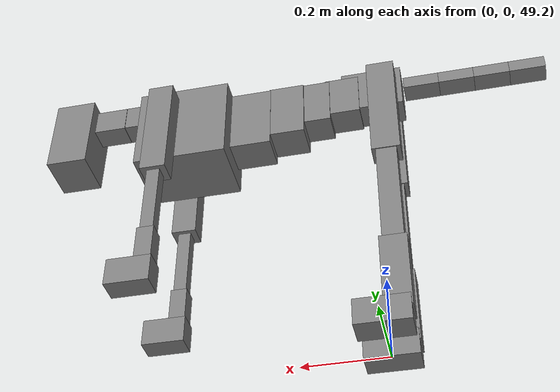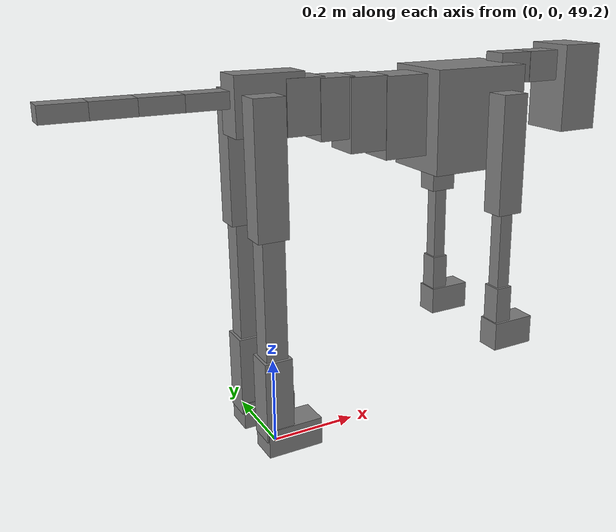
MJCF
<mujoco model="dog">

    <default>
        <joint armature="0.02" stiffness="1" damping="0.2" limited="true"/>
        <geom condim="3" friction="1 0.05 0.05" margin="0.01"/>
        <motor ctrllimited="true" ctrlrange="-1.0 1.0" forcelimited="true" gear="50"/>
    </default>

    <compiler inertiafromgeom="true" angle="radian"/>

    <option timestep="0.016" iterations="50" tolerance="1e-10" solver="Newton" jacobian="dense" cone="pyramidal"/>

    <size nconmax="20000" njmax="60000" nstack="5000000"/>
    <visual>
        <map force="0.1" zfar="30"/>
        <rgba haze="0.15 0.25 0.35 1"/>
        <quality shadowsize="2048"/>
        <global offwidth="800" offheight="800"/>
    </visual>

    <asset>
        <texture type="skybox" builtin="gradient" rgb1="0.3 0.5 0.7" rgb2="0 0 0" width="512" height="512"/>
        <texture name="texplane" type="2d" builtin="checker" rgb1=".2 .3 .4" rgb2=".1 0.15 0.2" width="512" height="512"
                 mark="cross" markrgb=".8 .8 .8"/>
        <texture name="texgeom" type="cube" builtin="flat" mark="cross" width="127" height="1278" rgb1="0.8 0.6 0.4"
                 rgb2="0.8 0.6 0.4" markrgb="1 1 1" random="0.01"/>

        <material name="matplane" reflectance="0.3" texture="texplane" texrepeat="1 1" texuniform="true"/>
        <material name="matgeom" texture="texgeom" texuniform="true" rgba="0.8 0.6 .4 1"/>
    </asset>

    <worldbody>
        <geom name="floor" pos="0 0 0" size="0 0 .25" type="plane" material="matplane" condim="3"/>

        <light directional="false" diffuse=".2 .2 .2" specular="0 0 0" pos="0 0 5" dir="0 0 -1" castshadow="false"/>
        <light mode="targetbodycom" target="torso" directional="false" diffuse=".8 .8 .8" specular="0.3 0.3 0.3"
               pos="0 0 4.0" dir="0 0 -1"/>

        <body name="root" pos="0 0 50">
            <freejoint name="root_1"/>
            <geom type="box" pos="0 0 -0.02" size="0.0774  0.0358  0.063" density="2030"/>

            <body name="spine1" pos="0.054 0 0">
                <joint name="spine1_y" axis="0 1 0" range="0 0.7" limited="true"/>
                <geom type="box" pos="0.02375 0 -0.03" size="0.04375  0.0375  0.05985" density="2030"/>

                <body name="spine2" pos="0.0612 0 0">
                    <joint name="spine2_y" axis="0 1 0" range="-0.15 0.15" limited="true"/>
                    <geom type="box" pos="0.03555  0  -0.04" size="0.04055  0.039  0.06615" density="2030"/>

                    <body name="spine3" pos="0.0730 0 0">
                        <joint name="spine3_y" axis="0 1 0" range="-0.15 0.15" limited="true"/>
                        <geom type="box" pos="0.03555  0  -0.057" size="0.04555  0.0445  0.081" density="2030"/>

                        <body name="spine4" pos="0.0780 0 0">
                            <joint name="spine4_y" axis="0 1 0" range="-0.15 0.15" limited="true"/>
                            <geom type="box" pos="0.05265  0  -0.07" size="0.05265  0.045  0.09135" density="2030"/>

                            <body name="torso" pos="0.1082 0 0">
                                <joint name="torso_y" axis="0 1 0" range="-0.15 0.15" limited="true"/>
                                <geom type="box" pos="0.11925  0  -0.085" size="0.11925  0.085  0.11745"
                                      density="2030"/>

                                <body name="neck1" pos="0.2160  0   0.0180">
                                    <joint name="neck1_y" axis="0 1 0" range="-1.2  -1" limited="true"/>
                                    <geom type="box" pos="0.0423  0  0" size="0.0423  0.03  0.036" density="2325"/>

                                    <body name="neck2" pos="0.0853  0  0">
                                        <joint name="neck2_y" axis="0 1 0" range="0.1  0" limited="true"/>
                                        <geom type="box" pos="0.0423  0  0" size="0.0423  0.03  0.036" density="2325"/>

                                        <body name="head" pos="0.0853  0  0">
                                            <joint name="head_y" axis="0 1 0" range="-0.3  -0.2" limited="true"/>
                                            <geom type="box" pos="0.0531  0  -0.055" size="0.0531  0.06  0.1044"
                                                  density="4030"/>

                                        </body>
                                    </body>
                                </body>

                                <body name="front_shoulder" pos="0.156  0   -0.0480">
                                    <joint name="front_shoulder_y" axis="0 1 0" range="-1 1.5" limited="true"/>
                                    <geom type="box" pos="0 0.13 -0.1105" size="0.0320  0.0273  0.1371" density="1158"/>
                                    <geom type="box" pos="0 -0.13 -0.1105" size="0.0320  0.0273  0.1371"
                                          density="1158"/>

                                    <body name="front_elbow" pos="0  0  -0.2210">
                                        <joint name="front_elbow_y" axis="0 1 0" range="-2 0" limited="true"/>
                                        <geom type="box" pos="0 0.13 -0.1100" size="0.0163  0.0167  0.1100"
                                              density="1081"/>
                                        <geom type="box" pos="0 -0.13 -0.1100" size="0.0163  0.0167  0.1100"
                                              density="1081"/>

                                        <body name="front_wrist" pos="0  0  -0.2199">
                                            <joint name="front_wrist_y" axis="0 1 0" range="-0.2 0" limited="true"/>
                                            <geom type="box" pos="0 0.13 -0.0439" size="0.0206  0.0229  0.0570"
                                                  density="1664"/>
                                            <geom type="box" pos="0 -0.13 -0.0439" size="0.0206  0.0229  0.0570"
                                                  density="1664"/>

                                            <body name="front_finger_end" pos="0  0  -0.0878">
                                                <joint name="front_finger_y" axis="0 1 0" range="-0.4 1"
                                                       limited="true"/>
                                                <geom type="box" pos="0.0288  0.13  -0.0187"
                                                      size="0.0529  0.0288  0.0337" density="1515"/>
                                                <geom type="box" pos="0.0288  -0.13  -0.0187"
                                                      size="0.0529  0.0288  0.0337" density="1515"/>

                                            </body>

                                        </body>
                                    </body>
                                </body>

                            </body>
                        </body>
                    </body>
                </body>
            </body>

            <body name="back_hip" pos="-0.03 0 -0.018">
                <joint name="back_hip_y" axis="0 1 0" range="-1.5 0.3" limited="true"/>
                <geom type="box" pos="0 0.07 -0.1231" size="0.0348  0.0273  0.1459" density="1154"/>
                <geom type="box" pos="0 -0.07 -0.1231" size="0.0348  0.0273  0.1459" density="1154"/>

                <body name="back_knee" pos="0  0  -0.2461">
                    <joint name="back_knee_y" axis="0 1 0" range="0 2.8" limited="true"/>
                    <geom type="box" pos="0 0.07 -0.1493" size="0.0251  0.0248  0.1649" density="1227"/>
                    <geom type="box" pos="0 -0.07 -0.1493" size="0.0251  0.0248  0.1649" density="1227"/>

                    <body name="back_ankle" pos="0  0  -0.2986">
                        <joint name="back_ankle_y" axis="0 1 0" range="-2.2 0" limited="true"/>
                        <geom type="box" pos="0 0.07 -0.0812" size="0.0319  0.0319  0.0925" density="1284"/>
                        <geom type="box" pos="0 -0.07 -0.0812" size="0.0319  0.0319  0.0925" density="1284"/>

                        <body name="back_toe_end" pos="0  0  -0.1625">
                            <joint name="back_toe_y" axis="0 1 0" range="-0.4 1" limited="true"/>
                            <geom type="box" pos="0.0345  0.07  -0.0167" size="0.0632  0.0345  0.0317" density="1515"/>
                            <geom type="box" pos="0.0345  -0.07  -0.0167" size="0.0632  0.0345  0.0317" density="1515"/>

                        </body>
                    </body>
                </body>
            </body>

            <body name="tail1" pos="-0.074 0 -0.006">
                <joint name="tail1_y" axis="0 1 0" range="-0.2 0.2" limited="true"/>
                <geom type="box" pos="-0.0536  0  0" size="0.045  0.025  0.0175" density="1587"/>

                <body name="tail2" pos="-0.09 0 0">
                    <joint name="tail2_y" axis="0 1 0" range="-0.2 0.2" limited="true"/>
                    <geom type="box" pos="-0.0536  0  0" size="0.045  0.025  0.0175" density="1587"/>

                    <body name="tail3" pos="-0.09 0 0">
                        <joint name="tail3_y" axis="0 1 0" range="-0.2 0.2" limited="true"/>
                        <geom type="box" pos="-0.0536  0  0" size="0.045  0.025  0.0175" density="1587"/>

                        <body name="tail4" pos="-0.09 0 0">
                            <joint name="tail4_y" axis="0 1 0" range="-0.2 0.2" limited="true"/>
                            <geom type="box" pos="-0.0536  0  0" size="0.045  0.025  0.0175" density="1587"/>

                        </body>
                    </body>
                </body>
            </body>
        </body>
    </worldbody>

    <actuator>
        <motor joint="spine1_y" forcerange="-150 150     "/>
        <motor joint="spine2_y" forcerange="-150 150     "/>
        <motor joint="spine3_y" forcerange="-150 150     "/>
        <motor joint="spine4_y" forcerange="-150 150     "/>
        <motor joint="torso_y" forcerange="-150 150     "/>
        <motor joint="neck1_y" forcerange="-100 100       "/>
        <motor joint="neck2_y" forcerange="-100 100       "/>
        <motor joint="head_y" forcerange="-150 150       "/>
        <motor joint="front_shoulder_y" forcerange="-138.70 143.58"/>
        <motor joint="front_elbow_y" forcerange="-110.08 111.36"/>
        <motor joint="front_wrist_y" forcerange="-108.01 75.41"/>
        <motor joint="front_finger_y" forcerange="-78.29 35.56"/>
        <motor joint="back_hip_y" forcerange="-313.70 250.38"/>
        <motor joint="back_knee_y" forcerange="-257.42 302.98"/>
        <motor joint="back_angle_y" forcerange="-167.62 242.25"/>
        <motor joint="back_toe_y" forcerange="-93.81 102.06"/>
        <motor joint="tail1_y" forcerange="-50 50     "/>
        <motor joint="tail2_y" forcerange="-50 50     "/>
        <motor joint="tail3_y" forcerange="-50 50     "/>
        <motor joint="tail4_y" forcerange="-50 50     "/>
    </actuator>
</mujoco>
